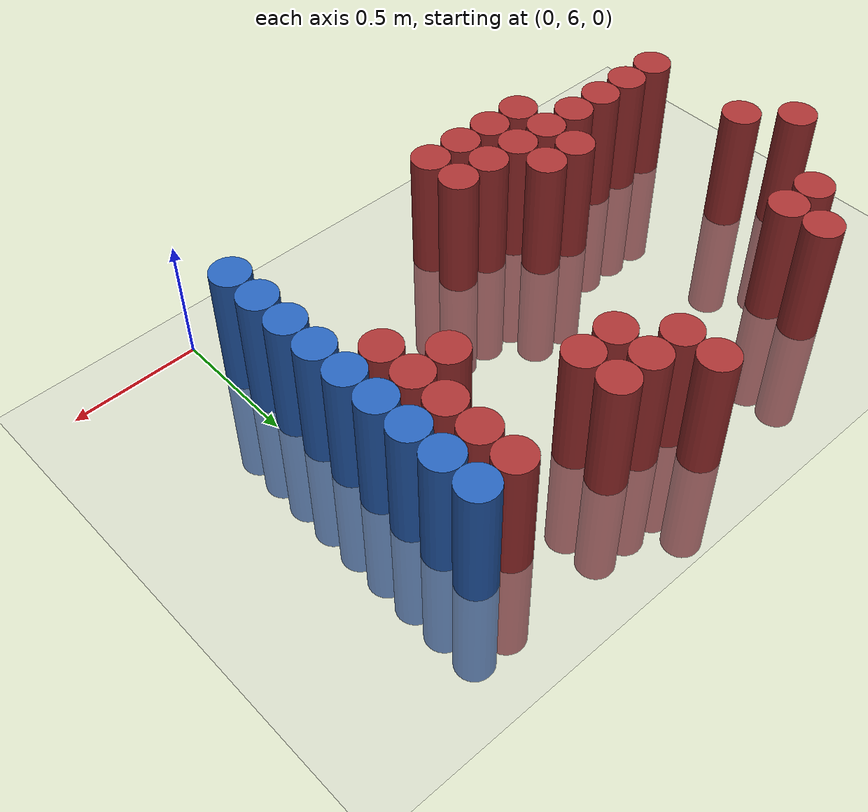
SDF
<sdf version="1.6">
 <world name="default">
  <model name="ground_plane">
   <static>1</static>
   <link name="link">
    <collision name="collision">
     <geometry><plane><normal>0 0 1</normal><size>100 100</size></plane></geometry>
     <surface><friction><ode><mu>100</mu><mu2>50</mu2></ode></friction></surface>
    </collision>
    <visual name="visual">
     <cast_shadows>0</cast_shadows>
     <geometry><plane><normal>0 0 1</normal><size>100 100</size></plane></geometry>
     <material>
      <script><uri>file://media/materials/scripts/gazebo.material</uri><name>Gazebo/Grey</name></script>
     </material>
    </visual>
   </link>
  </model>
  <model name="unit_cylinder_210">
   <static>1</static>
   <pose>-2.175000 6.975000 0.000000 0.000000 0.000000 0.000000</pose>
   <link name="link">
    <inertial>
     <mass>1</mass>
     <inertia><ixx>0.145833</ixx><ixy>0</ixy><ixz>0</ixz><iyy>0.145833</iyy><iyz>0</iyz><izz>0.125</izz></inertia>
    </inertial>
    <collision name="collision">
     <geometry><cylinder><radius>0.075000</radius><length>1</length></cylinder></geometry>
    </collision>
    <visual name="visual">
     <geometry><cylinder><radius>0.075000</radius><length>1</length></cylinder></geometry>
     <material>
      <ambient>0.648000 0.192000 0.192000 1</ambient>
      <diffuse>0.648000 0.192000 0.192000 1</diffuse>
     </material>
     <material>
      <script><name>Gazebo/Grey</name><uri>file://media/materials/scripts/gazebo.material</uri></script>
     </material>
    </visual>
    <sensor name="sensor_contact" type="contact"><contact><collision>collision</collision></contact></sensor>
   </link>
   <plugin filename="gz-sim-touchplugin-system" name="gz::sim::systems::TouchPlugin">
    <target>robot</target>
    <namespace>robot</namespace>
    <time>0.001</time>
    <enabled>true</enabled>
   </plugin>
  </model>
  <model name="unit_cylinder_212">
   <static>1</static>
   <pose>-2.025000 6.375000 0.000000 0.000000 0.000000 0.000000</pose>
   <link name="link">
    <inertial>
     <mass>1</mass>
     <inertia><ixx>0.145833</ixx><ixy>0</ixy><ixz>0</ixz><iyy>0.145833</iyy><iyz>0</iyz><izz>0.125</izz></inertia>
    </inertial>
    <collision name="collision">
     <geometry><cylinder><radius>0.075000</radius><length>1</length></cylinder></geometry>
    </collision>
    <visual name="visual">
     <geometry><cylinder><radius>0.075000</radius><length>1</length></cylinder></geometry>
     <material>
      <ambient>0.648000 0.192000 0.192000 1</ambient>
      <diffuse>0.648000 0.192000 0.192000 1</diffuse>
     </material>
     <material>
      <script><name>Gazebo/Grey</name><uri>file://media/materials/scripts/gazebo.material</uri></script>
     </material>
    </visual>
    <sensor name="sensor_contact" type="contact"><contact><collision>collision</collision></contact></sensor>
   </link>
   <plugin filename="gz-sim-touchplugin-system" name="gz::sim::systems::TouchPlugin">
    <target>robot</target>
    <namespace>robot</namespace>
    <time>0.001</time>
    <enabled>true</enabled>
   </plugin>
  </model>
  <model name="unit_cylinder_213">
   <static>1</static>
   <pose>-2.025000 6.825000 0.000000 0.000000 0.000000 0.000000</pose>
   <link name="link">
    <inertial>
     <mass>1</mass>
     <inertia><ixx>0.145833</ixx><ixy>0</ixy><ixz>0</ixz><iyy>0.145833</iyy><iyz>0</iyz><izz>0.125</izz></inertia>
    </inertial>
    <collision name="collision">
     <geometry><cylinder><radius>0.075000</radius><length>1</length></cylinder></geometry>
    </collision>
    <visual name="visual">
     <geometry><cylinder><radius>0.075000</radius><length>1</length></cylinder></geometry>
     <material>
      <ambient>0.648000 0.192000 0.192000 1</ambient>
      <diffuse>0.648000 0.192000 0.192000 1</diffuse>
     </material>
     <material>
      <script><name>Gazebo/Grey</name><uri>file://media/materials/scripts/gazebo.material</uri></script>
     </material>
    </visual>
    <sensor name="sensor_contact" type="contact"><contact><collision>collision</collision></contact></sensor>
   </link>
   <plugin filename="gz-sim-touchplugin-system" name="gz::sim::systems::TouchPlugin">
    <target>robot</target>
    <namespace>robot</namespace>
    <time>0.001</time>
    <enabled>true</enabled>
   </plugin>
  </model>
  <model name="unit_cylinder_217">
   <static>1</static>
   <pose>-1.875000 6.375000 0.000000 0.000000 0.000000 0.000000</pose>
   <link name="link">
    <inertial>
     <mass>1</mass>
     <inertia><ixx>0.145833</ixx><ixy>0</ixy><ixz>0</ixz><iyy>0.145833</iyy><iyz>0</iyz><izz>0.125</izz></inertia>
    </inertial>
    <collision name="collision">
     <geometry><cylinder><radius>0.075000</radius><length>1</length></cylinder></geometry>
    </collision>
    <visual name="visual">
     <geometry><cylinder><radius>0.075000</radius><length>1</length></cylinder></geometry>
     <material>
      <ambient>0.648000 0.192000 0.192000 1</ambient>
      <diffuse>0.648000 0.192000 0.192000 1</diffuse>
     </material>
     <material>
      <script><name>Gazebo/Grey</name><uri>file://media/materials/scripts/gazebo.material</uri></script>
     </material>
    </visual>
    <sensor name="sensor_contact" type="contact"><contact><collision>collision</collision></contact></sensor>
   </link>
   <plugin filename="gz-sim-touchplugin-system" name="gz::sim::systems::TouchPlugin">
    <target>robot</target>
    <namespace>robot</namespace>
    <time>0.001</time>
    <enabled>true</enabled>
   </plugin>
  </model>
  <model name="unit_cylinder_218">
   <static>1</static>
   <pose>-1.875000 7.275000 0.000000 0.000000 0.000000 0.000000</pose>
   <link name="link">
    <inertial>
     <mass>1</mass>
     <inertia><ixx>0.145833</ixx><ixy>0</ixy><ixz>0</ixz><iyy>0.145833</iyy><iyz>0</iyz><izz>0.125</izz></inertia>
    </inertial>
    <collision name="collision">
     <geometry><cylinder><radius>0.075000</radius><length>1</length></cylinder></geometry>
    </collision>
    <visual name="visual">
     <geometry><cylinder><radius>0.075000</radius><length>1</length></cylinder></geometry>
     <material>
      <ambient>0.648000 0.192000 0.192000 1</ambient>
      <diffuse>0.648000 0.192000 0.192000 1</diffuse>
     </material>
     <material>
      <script><name>Gazebo/Grey</name><uri>file://media/materials/scripts/gazebo.material</uri></script>
     </material>
    </visual>
    <sensor name="sensor_contact" type="contact"><contact><collision>collision</collision></contact></sensor>
   </link>
   <plugin filename="gz-sim-touchplugin-system" name="gz::sim::systems::TouchPlugin">
    <target>robot</target>
    <namespace>robot</namespace>
    <time>0.001</time>
    <enabled>true</enabled>
   </plugin>
  </model>
  <model name="unit_cylinder_221">
   <static>1</static>
   <pose>-1.725000 6.375000 0.000000 0.000000 0.000000 0.000000</pose>
   <link name="link">
    <inertial>
     <mass>1</mass>
     <inertia><ixx>0.145833</ixx><ixy>0</ixy><ixz>0</ixz><iyy>0.145833</iyy><iyz>0</iyz><izz>0.125</izz></inertia>
    </inertial>
    <collision name="collision">
     <geometry><cylinder><radius>0.075000</radius><length>1</length></cylinder></geometry>
    </collision>
    <visual name="visual">
     <geometry><cylinder><radius>0.075000</radius><length>1</length></cylinder></geometry>
     <material>
      <ambient>0.648000 0.192000 0.192000 1</ambient>
      <diffuse>0.648000 0.192000 0.192000 1</diffuse>
     </material>
     <material>
      <script><name>Gazebo/Grey</name><uri>file://media/materials/scripts/gazebo.material</uri></script>
     </material>
    </visual>
    <sensor name="sensor_contact" type="contact"><contact><collision>collision</collision></contact></sensor>
   </link>
   <plugin filename="gz-sim-touchplugin-system" name="gz::sim::systems::TouchPlugin">
    <target>robot</target>
    <namespace>robot</namespace>
    <time>0.001</time>
    <enabled>true</enabled>
   </plugin>
  </model>
  <model name="unit_cylinder_222">
   <static>1</static>
   <pose>-1.725000 7.275000 0.000000 0.000000 0.000000 0.000000</pose>
   <link name="link">
    <inertial>
     <mass>1</mass>
     <inertia><ixx>0.145833</ixx><ixy>0</ixy><ixz>0</ixz><iyy>0.145833</iyy><iyz>0</iyz><izz>0.125</izz></inertia>
    </inertial>
    <collision name="collision">
     <geometry><cylinder><radius>0.075000</radius><length>1</length></cylinder></geometry>
    </collision>
    <visual name="visual">
     <geometry><cylinder><radius>0.075000</radius><length>1</length></cylinder></geometry>
     <material>
      <ambient>0.648000 0.192000 0.192000 1</ambient>
      <diffuse>0.648000 0.192000 0.192000 1</diffuse>
     </material>
     <material>
      <script><name>Gazebo/Grey</name><uri>file://media/materials/scripts/gazebo.material</uri></script>
     </material>
    </visual>
    <sensor name="sensor_contact" type="contact"><contact><collision>collision</collision></contact></sensor>
   </link>
   <plugin filename="gz-sim-touchplugin-system" name="gz::sim::systems::TouchPlugin">
    <target>robot</target>
    <namespace>robot</namespace>
    <time>0.001</time>
    <enabled>true</enabled>
   </plugin>
  </model>
  <model name="unit_cylinder_223">
   <static>1</static>
   <pose>-1.725000 7.425000 0.000000 0.000000 0.000000 0.000000</pose>
   <link name="link">
    <inertial>
     <mass>1</mass>
     <inertia><ixx>0.145833</ixx><ixy>0</ixy><ixz>0</ixz><iyy>0.145833</iyy><iyz>0</iyz><izz>0.125</izz></inertia>
    </inertial>
    <collision name="collision">
     <geometry><cylinder><radius>0.075000</radius><length>1</length></cylinder></geometry>
    </collision>
    <visual name="visual">
     <geometry><cylinder><radius>0.075000</radius><length>1</length></cylinder></geometry>
     <material>
      <ambient>0.648000 0.192000 0.192000 1</ambient>
      <diffuse>0.648000 0.192000 0.192000 1</diffuse>
     </material>
     <material>
      <script><name>Gazebo/Grey</name><uri>file://media/materials/scripts/gazebo.material</uri></script>
     </material>
    </visual>
    <sensor name="sensor_contact" type="contact"><contact><collision>collision</collision></contact></sensor>
   </link>
   <plugin filename="gz-sim-touchplugin-system" name="gz::sim::systems::TouchPlugin">
    <target>robot</target>
    <namespace>robot</namespace>
    <time>0.001</time>
    <enabled>true</enabled>
   </plugin>
  </model>
  <model name="unit_cylinder_226">
   <static>1</static>
   <pose>-1.575000 6.375000 0.000000 0.000000 0.000000 0.000000</pose>
   <link name="link">
    <inertial>
     <mass>1</mass>
     <inertia><ixx>0.145833</ixx><ixy>0</ixy><ixz>0</ixz><iyy>0.145833</iyy><iyz>0</iyz><izz>0.125</izz></inertia>
    </inertial>
    <collision name="collision">
     <geometry><cylinder><radius>0.075000</radius><length>1</length></cylinder></geometry>
    </collision>
    <visual name="visual">
     <geometry><cylinder><radius>0.075000</radius><length>1</length></cylinder></geometry>
     <material>
      <ambient>0.648000 0.192000 0.192000 1</ambient>
      <diffuse>0.648000 0.192000 0.192000 1</diffuse>
     </material>
     <material>
      <script><name>Gazebo/Grey</name><uri>file://media/materials/scripts/gazebo.material</uri></script>
     </material>
    </visual>
    <sensor name="sensor_contact" type="contact"><contact><collision>collision</collision></contact></sensor>
   </link>
   <plugin filename="gz-sim-touchplugin-system" name="gz::sim::systems::TouchPlugin">
    <target>robot</target>
    <namespace>robot</namespace>
    <time>0.001</time>
    <enabled>true</enabled>
   </plugin>
  </model>
  <model name="unit_cylinder_229">
   <static>1</static>
   <pose>-1.425000 6.225000 0.000000 0.000000 0.000000 0.000000</pose>
   <link name="link">
    <inertial>
     <mass>1</mass>
     <inertia><ixx>0.145833</ixx><ixy>0</ixy><ixz>0</ixz><iyy>0.145833</iyy><iyz>0</iyz><izz>0.125</izz></inertia>
    </inertial>
    <collision name="collision">
     <geometry><cylinder><radius>0.075000</radius><length>1</length></cylinder></geometry>
    </collision>
    <visual name="visual">
     <geometry><cylinder><radius>0.075000</radius><length>1</length></cylinder></geometry>
     <material>
      <ambient>0.648000 0.192000 0.192000 1</ambient>
      <diffuse>0.648000 0.192000 0.192000 1</diffuse>
     </material>
     <material>
      <script><name>Gazebo/Grey</name><uri>file://media/materials/scripts/gazebo.material</uri></script>
     </material>
    </visual>
    <sensor name="sensor_contact" type="contact"><contact><collision>collision</collision></contact></sensor>
   </link>
   <plugin filename="gz-sim-touchplugin-system" name="gz::sim::systems::TouchPlugin">
    <target>robot</target>
    <namespace>robot</namespace>
    <time>0.001</time>
    <enabled>true</enabled>
   </plugin>
  </model>
  <model name="unit_cylinder_230">
   <static>1</static>
   <pose>-1.425000 6.375000 0.000000 0.000000 0.000000 0.000000</pose>
   <link name="link">
    <inertial>
     <mass>1</mass>
     <inertia><ixx>0.145833</ixx><ixy>0</ixy><ixz>0</ixz><iyy>0.145833</iyy><iyz>0</iyz><izz>0.125</izz></inertia>
    </inertial>
    <collision name="collision">
     <geometry><cylinder><radius>0.075000</radius><length>1</length></cylinder></geometry>
    </collision>
    <visual name="visual">
     <geometry><cylinder><radius>0.075000</radius><length>1</length></cylinder></geometry>
     <material>
      <ambient>0.648000 0.192000 0.192000 1</ambient>
      <diffuse>0.648000 0.192000 0.192000 1</diffuse>
     </material>
     <material>
      <script><name>Gazebo/Grey</name><uri>file://media/materials/scripts/gazebo.material</uri></script>
     </material>
    </visual>
    <sensor name="sensor_contact" type="contact"><contact><collision>collision</collision></contact></sensor>
   </link>
   <plugin filename="gz-sim-touchplugin-system" name="gz::sim::systems::TouchPlugin">
    <target>robot</target>
    <namespace>robot</namespace>
    <time>0.001</time>
    <enabled>true</enabled>
   </plugin>
  </model>
  <model name="unit_cylinder_231">
   <static>1</static>
   <pose>-1.425000 6.525000 0.000000 0.000000 0.000000 0.000000</pose>
   <link name="link">
    <inertial>
     <mass>1</mass>
     <inertia><ixx>0.145833</ixx><ixy>0</ixy><ixz>0</ixz><iyy>0.145833</iyy><iyz>0</iyz><izz>0.125</izz></inertia>
    </inertial>
    <collision name="collision">
     <geometry><cylinder><radius>0.075000</radius><length>1</length></cylinder></geometry>
    </collision>
    <visual name="visual">
     <geometry><cylinder><radius>0.075000</radius><length>1</length></cylinder></geometry>
     <material>
      <ambient>0.648000 0.192000 0.192000 1</ambient>
      <diffuse>0.648000 0.192000 0.192000 1</diffuse>
     </material>
     <material>
      <script><name>Gazebo/Grey</name><uri>file://media/materials/scripts/gazebo.material</uri></script>
     </material>
    </visual>
    <sensor name="sensor_contact" type="contact"><contact><collision>collision</collision></contact></sensor>
   </link>
   <plugin filename="gz-sim-touchplugin-system" name="gz::sim::systems::TouchPlugin">
    <target>robot</target>
    <namespace>robot</namespace>
    <time>0.001</time>
    <enabled>true</enabled>
   </plugin>
  </model>
  <model name="unit_cylinder_233">
   <static>1</static>
   <pose>-1.275000 6.225000 0.000000 0.000000 0.000000 0.000000</pose>
   <link name="link">
    <inertial>
     <mass>1</mass>
     <inertia><ixx>0.145833</ixx><ixy>0</ixy><ixz>0</ixz><iyy>0.145833</iyy><iyz>0</iyz><izz>0.125</izz></inertia>
    </inertial>
    <collision name="collision">
     <geometry><cylinder><radius>0.075000</radius><length>1</length></cylinder></geometry>
    </collision>
    <visual name="visual">
     <geometry><cylinder><radius>0.075000</radius><length>1</length></cylinder></geometry>
     <material>
      <ambient>0.648000 0.192000 0.192000 1</ambient>
      <diffuse>0.648000 0.192000 0.192000 1</diffuse>
     </material>
     <material>
      <script><name>Gazebo/Grey</name><uri>file://media/materials/scripts/gazebo.material</uri></script>
     </material>
    </visual>
    <sensor name="sensor_contact" type="contact"><contact><collision>collision</collision></contact></sensor>
   </link>
   <plugin filename="gz-sim-touchplugin-system" name="gz::sim::systems::TouchPlugin">
    <target>robot</target>
    <namespace>robot</namespace>
    <time>0.001</time>
    <enabled>true</enabled>
   </plugin>
  </model>
  <model name="unit_cylinder_234">
   <static>1</static>
   <pose>-1.275000 6.375000 0.000000 0.000000 0.000000 0.000000</pose>
   <link name="link">
    <inertial>
     <mass>1</mass>
     <inertia><ixx>0.145833</ixx><ixy>0</ixy><ixz>0</ixz><iyy>0.145833</iyy><iyz>0</iyz><izz>0.125</izz></inertia>
    </inertial>
    <collision name="collision">
     <geometry><cylinder><radius>0.075000</radius><length>1</length></cylinder></geometry>
    </collision>
    <visual name="visual">
     <geometry><cylinder><radius>0.075000</radius><length>1</length></cylinder></geometry>
     <material>
      <ambient>0.648000 0.192000 0.192000 1</ambient>
      <diffuse>0.648000 0.192000 0.192000 1</diffuse>
     </material>
     <material>
      <script><name>Gazebo/Grey</name><uri>file://media/materials/scripts/gazebo.material</uri></script>
     </material>
    </visual>
    <sensor name="sensor_contact" type="contact"><contact><collision>collision</collision></contact></sensor>
   </link>
   <plugin filename="gz-sim-touchplugin-system" name="gz::sim::systems::TouchPlugin">
    <target>robot</target>
    <namespace>robot</namespace>
    <time>0.001</time>
    <enabled>true</enabled>
   </plugin>
  </model>
  <model name="unit_cylinder_235">
   <static>1</static>
   <pose>-1.275000 6.525000 0.000000 0.000000 0.000000 0.000000</pose>
   <link name="link">
    <inertial>
     <mass>1</mass>
     <inertia><ixx>0.145833</ixx><ixy>0</ixy><ixz>0</ixz><iyy>0.145833</iyy><iyz>0</iyz><izz>0.125</izz></inertia>
    </inertial>
    <collision name="collision">
     <geometry><cylinder><radius>0.075000</radius><length>1</length></cylinder></geometry>
    </collision>
    <visual name="visual">
     <geometry><cylinder><radius>0.075000</radius><length>1</length></cylinder></geometry>
     <material>
      <ambient>0.648000 0.192000 0.192000 1</ambient>
      <diffuse>0.648000 0.192000 0.192000 1</diffuse>
     </material>
     <material>
      <script><name>Gazebo/Grey</name><uri>file://media/materials/scripts/gazebo.material</uri></script>
     </material>
    </visual>
    <sensor name="sensor_contact" type="contact"><contact><collision>collision</collision></contact></sensor>
   </link>
   <plugin filename="gz-sim-touchplugin-system" name="gz::sim::systems::TouchPlugin">
    <target>robot</target>
    <namespace>robot</namespace>
    <time>0.001</time>
    <enabled>true</enabled>
   </plugin>
  </model>
  <model name="unit_cylinder_238">
   <static>1</static>
   <pose>-1.125000 6.225000 0.000000 0.000000 0.000000 0.000000</pose>
   <link name="link">
    <inertial>
     <mass>1</mass>
     <inertia><ixx>0.145833</ixx><ixy>0</ixy><ixz>0</ixz><iyy>0.145833</iyy><iyz>0</iyz><izz>0.125</izz></inertia>
    </inertial>
    <collision name="collision">
     <geometry><cylinder><radius>0.075000</radius><length>1</length></cylinder></geometry>
    </collision>
    <visual name="visual">
     <geometry><cylinder><radius>0.075000</radius><length>1</length></cylinder></geometry>
     <material>
      <ambient>0.648000 0.192000 0.192000 1</ambient>
      <diffuse>0.648000 0.192000 0.192000 1</diffuse>
     </material>
     <material>
      <script><name>Gazebo/Grey</name><uri>file://media/materials/scripts/gazebo.material</uri></script>
     </material>
    </visual>
    <sensor name="sensor_contact" type="contact"><contact><collision>collision</collision></contact></sensor>
   </link>
   <plugin filename="gz-sim-touchplugin-system" name="gz::sim::systems::TouchPlugin">
    <target>robot</target>
    <namespace>robot</namespace>
    <time>0.001</time>
    <enabled>true</enabled>
   </plugin>
  </model>
  <model name="unit_cylinder_239">
   <static>1</static>
   <pose>-1.125000 6.375000 0.000000 0.000000 0.000000 0.000000</pose>
   <link name="link">
    <inertial>
     <mass>1</mass>
     <inertia><ixx>0.145833</ixx><ixy>0</ixy><ixz>0</ixz><iyy>0.145833</iyy><iyz>0</iyz><izz>0.125</izz></inertia>
    </inertial>
    <collision name="collision">
     <geometry><cylinder><radius>0.075000</radius><length>1</length></cylinder></geometry>
    </collision>
    <visual name="visual">
     <geometry><cylinder><radius>0.075000</radius><length>1</length></cylinder></geometry>
     <material>
      <ambient>0.648000 0.192000 0.192000 1</ambient>
      <diffuse>0.648000 0.192000 0.192000 1</diffuse>
     </material>
     <material>
      <script><name>Gazebo/Grey</name><uri>file://media/materials/scripts/gazebo.material</uri></script>
     </material>
    </visual>
    <sensor name="sensor_contact" type="contact"><contact><collision>collision</collision></contact></sensor>
   </link>
   <plugin filename="gz-sim-touchplugin-system" name="gz::sim::systems::TouchPlugin">
    <target>robot</target>
    <namespace>robot</namespace>
    <time>0.001</time>
    <enabled>true</enabled>
   </plugin>
  </model>
  <model name="unit_cylinder_247">
   <static>1</static>
   <pose>-0.975000 6.225000 0.000000 0.000000 0.000000 0.000000</pose>
   <link name="link">
    <inertial>
     <mass>1</mass>
     <inertia><ixx>0.145833</ixx><ixy>0</ixy><ixz>0</ixz><iyy>0.145833</iyy><iyz>0</iyz><izz>0.125</izz></inertia>
    </inertial>
    <collision name="collision">
     <geometry><cylinder><radius>0.075000</radius><length>1</length></cylinder></geometry>
    </collision>
    <visual name="visual">
     <geometry><cylinder><radius>0.075000</radius><length>1</length></cylinder></geometry>
     <material>
      <ambient>0.648000 0.192000 0.192000 1</ambient>
      <diffuse>0.648000 0.192000 0.192000 1</diffuse>
     </material>
     <material>
      <script><name>Gazebo/Grey</name><uri>file://media/materials/scripts/gazebo.material</uri></script>
     </material>
    </visual>
    <sensor name="sensor_contact" type="contact"><contact><collision>collision</collision></contact></sensor>
   </link>
   <plugin filename="gz-sim-touchplugin-system" name="gz::sim::systems::TouchPlugin">
    <target>robot</target>
    <namespace>robot</namespace>
    <time>0.001</time>
    <enabled>true</enabled>
   </plugin>
  </model>
  <model name="unit_cylinder_248">
   <static>1</static>
   <pose>-0.975000 6.375000 0.000000 0.000000 0.000000 0.000000</pose>
   <link name="link">
    <inertial>
     <mass>1</mass>
     <inertia><ixx>0.145833</ixx><ixy>0</ixy><ixz>0</ixz><iyy>0.145833</iyy><iyz>0</iyz><izz>0.125</izz></inertia>
    </inertial>
    <collision name="collision">
     <geometry><cylinder><radius>0.075000</radius><length>1</length></cylinder></geometry>
    </collision>
    <visual name="visual">
     <geometry><cylinder><radius>0.075000</radius><length>1</length></cylinder></geometry>
     <material>
      <ambient>0.648000 0.192000 0.192000 1</ambient>
      <diffuse>0.648000 0.192000 0.192000 1</diffuse>
     </material>
     <material>
      <script><name>Gazebo/Grey</name><uri>file://media/materials/scripts/gazebo.material</uri></script>
     </material>
    </visual>
    <sensor name="sensor_contact" type="contact"><contact><collision>collision</collision></contact></sensor>
   </link>
   <plugin filename="gz-sim-touchplugin-system" name="gz::sim::systems::TouchPlugin">
    <target>robot</target>
    <namespace>robot</namespace>
    <time>0.001</time>
    <enabled>true</enabled>
   </plugin>
  </model>
  <model name="unit_cylinder_249">
   <static>1</static>
   <pose>-0.975000 7.425000 0.000000 0.000000 0.000000 0.000000</pose>
   <link name="link">
    <inertial>
     <mass>1</mass>
     <inertia><ixx>0.145833</ixx><ixy>0</ixy><ixz>0</ixz><iyy>0.145833</iyy><iyz>0</iyz><izz>0.125</izz></inertia>
    </inertial>
    <collision name="collision">
     <geometry><cylinder><radius>0.075000</radius><length>1</length></cylinder></geometry>
    </collision>
    <visual name="visual">
     <geometry><cylinder><radius>0.075000</radius><length>1</length></cylinder></geometry>
     <material>
      <ambient>0.648000 0.192000 0.192000 1</ambient>
      <diffuse>0.648000 0.192000 0.192000 1</diffuse>
     </material>
     <material>
      <script><name>Gazebo/Grey</name><uri>file://media/materials/scripts/gazebo.material</uri></script>
     </material>
    </visual>
    <sensor name="sensor_contact" type="contact"><contact><collision>collision</collision></contact></sensor>
   </link>
   <plugin filename="gz-sim-touchplugin-system" name="gz::sim::systems::TouchPlugin">
    <target>robot</target>
    <namespace>robot</namespace>
    <time>0.001</time>
    <enabled>true</enabled>
   </plugin>
  </model>
  <model name="unit_cylinder_250">
   <static>1</static>
   <pose>-0.975000 7.575000 0.000000 0.000000 0.000000 0.000000</pose>
   <link name="link">
    <inertial>
     <mass>1</mass>
     <inertia><ixx>0.145833</ixx><ixy>0</ixy><ixz>0</ixz><iyy>0.145833</iyy><iyz>0</iyz><izz>0.125</izz></inertia>
    </inertial>
    <collision name="collision">
     <geometry><cylinder><radius>0.075000</radius><length>1</length></cylinder></geometry>
    </collision>
    <visual name="visual">
     <geometry><cylinder><radius>0.075000</radius><length>1</length></cylinder></geometry>
     <material>
      <ambient>0.648000 0.192000 0.192000 1</ambient>
      <diffuse>0.648000 0.192000 0.192000 1</diffuse>
     </material>
     <material>
      <script><name>Gazebo/Grey</name><uri>file://media/materials/scripts/gazebo.material</uri></script>
     </material>
    </visual>
    <sensor name="sensor_contact" type="contact"><contact><collision>collision</collision></contact></sensor>
   </link>
   <plugin filename="gz-sim-touchplugin-system" name="gz::sim::systems::TouchPlugin">
    <target>robot</target>
    <namespace>robot</namespace>
    <time>0.001</time>
    <enabled>true</enabled>
   </plugin>
  </model>
  <model name="unit_cylinder_257">
   <static>1</static>
   <pose>-0.825000 7.275000 0.000000 0.000000 0.000000 0.000000</pose>
   <link name="link">
    <inertial>
     <mass>1</mass>
     <inertia><ixx>0.145833</ixx><ixy>0</ixy><ixz>0</ixz><iyy>0.145833</iyy><iyz>0</iyz><izz>0.125</izz></inertia>
    </inertial>
    <collision name="collision">
     <geometry><cylinder><radius>0.075000</radius><length>1</length></cylinder></geometry>
    </collision>
    <visual name="visual">
     <geometry><cylinder><radius>0.075000</radius><length>1</length></cylinder></geometry>
     <material>
      <ambient>0.648000 0.192000 0.192000 1</ambient>
      <diffuse>0.648000 0.192000 0.192000 1</diffuse>
     </material>
     <material>
      <script><name>Gazebo/Grey</name><uri>file://media/materials/scripts/gazebo.material</uri></script>
     </material>
    </visual>
    <sensor name="sensor_contact" type="contact"><contact><collision>collision</collision></contact></sensor>
   </link>
   <plugin filename="gz-sim-touchplugin-system" name="gz::sim::systems::TouchPlugin">
    <target>robot</target>
    <namespace>robot</namespace>
    <time>0.001</time>
    <enabled>true</enabled>
   </plugin>
  </model>
  <model name="unit_cylinder_258">
   <static>1</static>
   <pose>-0.825000 7.425000 0.000000 0.000000 0.000000 0.000000</pose>
   <link name="link">
    <inertial>
     <mass>1</mass>
     <inertia><ixx>0.145833</ixx><ixy>0</ixy><ixz>0</ixz><iyy>0.145833</iyy><iyz>0</iyz><izz>0.125</izz></inertia>
    </inertial>
    <collision name="collision">
     <geometry><cylinder><radius>0.075000</radius><length>1</length></cylinder></geometry>
    </collision>
    <visual name="visual">
     <geometry><cylinder><radius>0.075000</radius><length>1</length></cylinder></geometry>
     <material>
      <ambient>0.648000 0.192000 0.192000 1</ambient>
      <diffuse>0.648000 0.192000 0.192000 1</diffuse>
     </material>
     <material>
      <script><name>Gazebo/Grey</name><uri>file://media/materials/scripts/gazebo.material</uri></script>
     </material>
    </visual>
    <sensor name="sensor_contact" type="contact"><contact><collision>collision</collision></contact></sensor>
   </link>
   <plugin filename="gz-sim-touchplugin-system" name="gz::sim::systems::TouchPlugin">
    <target>robot</target>
    <namespace>robot</namespace>
    <time>0.001</time>
    <enabled>true</enabled>
   </plugin>
  </model>
  <model name="unit_cylinder_264">
   <static>1</static>
   <pose>-0.675000 7.275000 0.000000 0.000000 0.000000 0.000000</pose>
   <link name="link">
    <inertial>
     <mass>1</mass>
     <inertia><ixx>0.145833</ixx><ixy>0</ixy><ixz>0</ixz><iyy>0.145833</iyy><iyz>0</iyz><izz>0.125</izz></inertia>
    </inertial>
    <collision name="collision">
     <geometry><cylinder><radius>0.075000</radius><length>1</length></cylinder></geometry>
    </collision>
    <visual name="visual">
     <geometry><cylinder><radius>0.075000</radius><length>1</length></cylinder></geometry>
     <material>
      <ambient>0.648000 0.192000 0.192000 1</ambient>
      <diffuse>0.648000 0.192000 0.192000 1</diffuse>
     </material>
     <material>
      <script><name>Gazebo/Grey</name><uri>file://media/materials/scripts/gazebo.material</uri></script>
     </material>
    </visual>
    <sensor name="sensor_contact" type="contact"><contact><collision>collision</collision></contact></sensor>
   </link>
   <plugin filename="gz-sim-touchplugin-system" name="gz::sim::systems::TouchPlugin">
    <target>robot</target>
    <namespace>robot</namespace>
    <time>0.001</time>
    <enabled>true</enabled>
   </plugin>
  </model>
  <model name="unit_cylinder_265">
   <static>1</static>
   <pose>-0.675000 7.425000 0.000000 0.000000 0.000000 0.000000</pose>
   <link name="link">
    <inertial>
     <mass>1</mass>
     <inertia><ixx>0.145833</ixx><ixy>0</ixy><ixz>0</ixz><iyy>0.145833</iyy><iyz>0</iyz><izz>0.125</izz></inertia>
    </inertial>
    <collision name="collision">
     <geometry><cylinder><radius>0.075000</radius><length>1</length></cylinder></geometry>
    </collision>
    <visual name="visual">
     <geometry><cylinder><radius>0.075000</radius><length>1</length></cylinder></geometry>
     <material>
      <ambient>0.648000 0.192000 0.192000 1</ambient>
      <diffuse>0.648000 0.192000 0.192000 1</diffuse>
     </material>
     <material>
      <script><name>Gazebo/Grey</name><uri>file://media/materials/scripts/gazebo.material</uri></script>
     </material>
    </visual>
    <sensor name="sensor_contact" type="contact"><contact><collision>collision</collision></contact></sensor>
   </link>
   <plugin filename="gz-sim-touchplugin-system" name="gz::sim::systems::TouchPlugin">
    <target>robot</target>
    <namespace>robot</namespace>
    <time>0.001</time>
    <enabled>true</enabled>
   </plugin>
  </model>
  <model name="unit_cylinder_269">
   <static>1</static>
   <pose>-0.375000 6.975000 0.000000 0.000000 0.000000 0.000000</pose>
   <link name="link">
    <inertial>
     <mass>1</mass>
     <inertia><ixx>0.145833</ixx><ixy>0</ixy><ixz>0</ixz><iyy>0.145833</iyy><iyz>0</iyz><izz>0.125</izz></inertia>
    </inertial>
    <collision name="collision">
     <geometry><cylinder><radius>0.075000</radius><length>1</length></cylinder></geometry>
    </collision>
    <visual name="visual">
     <geometry><cylinder><radius>0.075000</radius><length>1</length></cylinder></geometry>
     <material>
      <ambient>0.648000 0.192000 0.192000 1</ambient>
      <diffuse>0.648000 0.192000 0.192000 1</diffuse>
     </material>
     <material>
      <script><name>Gazebo/Grey</name><uri>file://media/materials/scripts/gazebo.material</uri></script>
     </material>
    </visual>
    <sensor name="sensor_contact" type="contact"><contact><collision>collision</collision></contact></sensor>
   </link>
   <plugin filename="gz-sim-touchplugin-system" name="gz::sim::systems::TouchPlugin">
    <target>robot</target>
    <namespace>robot</namespace>
    <time>0.001</time>
    <enabled>true</enabled>
   </plugin>
  </model>
  <model name="unit_cylinder_278">
   <static>1</static>
   <pose>-0.225000 6.825000 0.000000 0.000000 0.000000 0.000000</pose>
   <link name="link">
    <inertial>
     <mass>1</mass>
     <inertia><ixx>0.145833</ixx><ixy>0</ixy><ixz>0</ixz><iyy>0.145833</iyy><iyz>0</iyz><izz>0.125</izz></inertia>
    </inertial>
    <collision name="collision">
     <geometry><cylinder><radius>0.075000</radius><length>1</length></cylinder></geometry>
    </collision>
    <visual name="visual">
     <geometry><cylinder><radius>0.075000</radius><length>1</length></cylinder></geometry>
     <material>
      <ambient>0.648000 0.192000 0.192000 1</ambient>
      <diffuse>0.648000 0.192000 0.192000 1</diffuse>
     </material>
     <material>
      <script><name>Gazebo/Grey</name><uri>file://media/materials/scripts/gazebo.material</uri></script>
     </material>
    </visual>
    <sensor name="sensor_contact" type="contact"><contact><collision>collision</collision></contact></sensor>
   </link>
   <plugin filename="gz-sim-touchplugin-system" name="gz::sim::systems::TouchPlugin">
    <target>robot</target>
    <namespace>robot</namespace>
    <time>0.001</time>
    <enabled>true</enabled>
   </plugin>
  </model>
  <model name="unit_cylinder_279">
   <static>1</static>
   <pose>-0.225000 6.975000 0.000000 0.000000 0.000000 0.000000</pose>
   <link name="link">
    <inertial>
     <mass>1</mass>
     <inertia><ixx>0.145833</ixx><ixy>0</ixy><ixz>0</ixz><iyy>0.145833</iyy><iyz>0</iyz><izz>0.125</izz></inertia>
    </inertial>
    <collision name="collision">
     <geometry><cylinder><radius>0.075000</radius><length>1</length></cylinder></geometry>
    </collision>
    <visual name="visual">
     <geometry><cylinder><radius>0.075000</radius><length>1</length></cylinder></geometry>
     <material>
      <ambient>0.648000 0.192000 0.192000 1</ambient>
      <diffuse>0.648000 0.192000 0.192000 1</diffuse>
     </material>
     <material>
      <script><name>Gazebo/Grey</name><uri>file://media/materials/scripts/gazebo.material</uri></script>
     </material>
    </visual>
    <sensor name="sensor_contact" type="contact"><contact><collision>collision</collision></contact></sensor>
   </link>
   <plugin filename="gz-sim-touchplugin-system" name="gz::sim::systems::TouchPlugin">
    <target>robot</target>
    <namespace>robot</namespace>
    <time>0.001</time>
    <enabled>true</enabled>
   </plugin>
  </model>
  <model name="unit_cylinder_280">
   <static>1</static>
   <pose>-0.225000 7.125000 0.000000 0.000000 0.000000 0.000000</pose>
   <link name="link">
    <inertial>
     <mass>1</mass>
     <inertia><ixx>0.145833</ixx><ixy>0</ixy><ixz>0</ixz><iyy>0.145833</iyy><iyz>0</iyz><izz>0.125</izz></inertia>
    </inertial>
    <collision name="collision">
     <geometry><cylinder><radius>0.075000</radius><length>1</length></cylinder></geometry>
    </collision>
    <visual name="visual">
     <geometry><cylinder><radius>0.075000</radius><length>1</length></cylinder></geometry>
     <material>
      <ambient>0.648000 0.192000 0.192000 1</ambient>
      <diffuse>0.648000 0.192000 0.192000 1</diffuse>
     </material>
     <material>
      <script><name>Gazebo/Grey</name><uri>file://media/materials/scripts/gazebo.material</uri></script>
     </material>
    </visual>
    <sensor name="sensor_contact" type="contact"><contact><collision>collision</collision></contact></sensor>
   </link>
   <plugin filename="gz-sim-touchplugin-system" name="gz::sim::systems::TouchPlugin">
    <target>robot</target>
    <namespace>robot</namespace>
    <time>0.001</time>
    <enabled>true</enabled>
   </plugin>
  </model>
  <model name="unit_cylinder_281">
   <static>1</static>
   <pose>-0.225000 7.275000 0.000000 0.000000 0.000000 0.000000</pose>
   <link name="link">
    <inertial>
     <mass>1</mass>
     <inertia><ixx>0.145833</ixx><ixy>0</ixy><ixz>0</ixz><iyy>0.145833</iyy><iyz>0</iyz><izz>0.125</izz></inertia>
    </inertial>
    <collision name="collision">
     <geometry><cylinder><radius>0.075000</radius><length>1</length></cylinder></geometry>
    </collision>
    <visual name="visual">
     <geometry><cylinder><radius>0.075000</radius><length>1</length></cylinder></geometry>
     <material>
      <ambient>0.648000 0.192000 0.192000 1</ambient>
      <diffuse>0.648000 0.192000 0.192000 1</diffuse>
     </material>
     <material>
      <script><name>Gazebo/Grey</name><uri>file://media/materials/scripts/gazebo.material</uri></script>
     </material>
    </visual>
    <sensor name="sensor_contact" type="contact"><contact><collision>collision</collision></contact></sensor>
   </link>
   <plugin filename="gz-sim-touchplugin-system" name="gz::sim::systems::TouchPlugin">
    <target>robot</target>
    <namespace>robot</namespace>
    <time>0.001</time>
    <enabled>true</enabled>
   </plugin>
  </model>
  <model name="unit_cylinder_282">
   <static>1</static>
   <pose>-0.225000 7.425000 0.000000 0.000000 0.000000 0.000000</pose>
   <link name="link">
    <inertial>
     <mass>1</mass>
     <inertia><ixx>0.145833</ixx><ixy>0</ixy><ixz>0</ixz><iyy>0.145833</iyy><iyz>0</iyz><izz>0.125</izz></inertia>
    </inertial>
    <collision name="collision">
     <geometry><cylinder><radius>0.075000</radius><length>1</length></cylinder></geometry>
    </collision>
    <visual name="visual">
     <geometry><cylinder><radius>0.075000</radius><length>1</length></cylinder></geometry>
     <material>
      <ambient>0.648000 0.192000 0.192000 1</ambient>
      <diffuse>0.648000 0.192000 0.192000 1</diffuse>
     </material>
     <material>
      <script><name>Gazebo/Grey</name><uri>file://media/materials/scripts/gazebo.material</uri></script>
     </material>
    </visual>
    <sensor name="sensor_contact" type="contact"><contact><collision>collision</collision></contact></sensor>
   </link>
   <plugin filename="gz-sim-touchplugin-system" name="gz::sim::systems::TouchPlugin">
    <target>robot</target>
    <namespace>robot</namespace>
    <time>0.001</time>
    <enabled>true</enabled>
   </plugin>
  </model>
  <model name="unit_cylinder_298">
   <static>1</static>
   <pose>-0.075000 6.225000 0.000000 0.000000 0.000000 0.000000</pose>
   <link name="link">
    <inertial>
     <mass>1</mass>
     <inertia><ixx>0.145833</ixx><ixy>0</ixy><ixz>0</ixz><iyy>0.145833</iyy><iyz>0</iyz><izz>0.125</izz></inertia>
    </inertial>
    <collision name="collision">
     <geometry><cylinder><radius>0.075000</radius><length>1</length></cylinder></geometry>
    </collision>
    <visual name="visual">
     <geometry><cylinder><radius>0.075000</radius><length>1</length></cylinder></geometry>
     <material>
      <ambient>0.152000 0.379000 0.720000 1</ambient>
      <diffuse>0.152000 0.379000 0.720000 1</diffuse>
     </material>
     <material>
      <script><name>Gazebo/Grey</name><uri>file://media/materials/scripts/gazebo.material</uri></script>
     </material>
    </visual>
    <sensor name="sensor_contact" type="contact"><contact><collision>collision</collision></contact></sensor>
   </link>
   <plugin filename="gz-sim-touchplugin-system" name="gz::sim::systems::TouchPlugin">
    <target>robot</target>
    <namespace>robot</namespace>
    <time>0.001</time>
    <enabled>true</enabled>
   </plugin>
  </model>
  <model name="unit_cylinder_299">
   <static>1</static>
   <pose>-0.075000 6.375000 0.000000 0.000000 0.000000 0.000000</pose>
   <link name="link">
    <inertial>
     <mass>1</mass>
     <inertia><ixx>0.145833</ixx><ixy>0</ixy><ixz>0</ixz><iyy>0.145833</iyy><iyz>0</iyz><izz>0.125</izz></inertia>
    </inertial>
    <collision name="collision">
     <geometry><cylinder><radius>0.075000</radius><length>1</length></cylinder></geometry>
    </collision>
    <visual name="visual">
     <geometry><cylinder><radius>0.075000</radius><length>1</length></cylinder></geometry>
     <material>
      <ambient>0.152000 0.379000 0.720000 1</ambient>
      <diffuse>0.152000 0.379000 0.720000 1</diffuse>
     </material>
     <material>
      <script><name>Gazebo/Grey</name><uri>file://media/materials/scripts/gazebo.material</uri></script>
     </material>
    </visual>
    <sensor name="sensor_contact" type="contact"><contact><collision>collision</collision></contact></sensor>
   </link>
   <plugin filename="gz-sim-touchplugin-system" name="gz::sim::systems::TouchPlugin">
    <target>robot</target>
    <namespace>robot</namespace>
    <time>0.001</time>
    <enabled>true</enabled>
   </plugin>
  </model>
  <model name="unit_cylinder_300">
   <static>1</static>
   <pose>-0.075000 6.525000 0.000000 0.000000 0.000000 0.000000</pose>
   <link name="link">
    <inertial>
     <mass>1</mass>
     <inertia><ixx>0.145833</ixx><ixy>0</ixy><ixz>0</ixz><iyy>0.145833</iyy><iyz>0</iyz><izz>0.125</izz></inertia>
    </inertial>
    <collision name="collision">
     <geometry><cylinder><radius>0.075000</radius><length>1</length></cylinder></geometry>
    </collision>
    <visual name="visual">
     <geometry><cylinder><radius>0.075000</radius><length>1</length></cylinder></geometry>
     <material>
      <ambient>0.152000 0.379000 0.720000 1</ambient>
      <diffuse>0.152000 0.379000 0.720000 1</diffuse>
     </material>
     <material>
      <script><name>Gazebo/Grey</name><uri>file://media/materials/scripts/gazebo.material</uri></script>
     </material>
    </visual>
    <sensor name="sensor_contact" type="contact"><contact><collision>collision</collision></contact></sensor>
   </link>
   <plugin filename="gz-sim-touchplugin-system" name="gz::sim::systems::TouchPlugin">
    <target>robot</target>
    <namespace>robot</namespace>
    <time>0.001</time>
    <enabled>true</enabled>
   </plugin>
  </model>
  <model name="unit_cylinder_301">
   <static>1</static>
   <pose>-0.075000 6.675000 0.000000 0.000000 0.000000 0.000000</pose>
   <link name="link">
    <inertial>
     <mass>1</mass>
     <inertia><ixx>0.145833</ixx><ixy>0</ixy><ixz>0</ixz><iyy>0.145833</iyy><iyz>0</iyz><izz>0.125</izz></inertia>
    </inertial>
    <collision name="collision">
     <geometry><cylinder><radius>0.075000</radius><length>1</length></cylinder></geometry>
    </collision>
    <visual name="visual">
     <geometry><cylinder><radius>0.075000</radius><length>1</length></cylinder></geometry>
     <material>
      <ambient>0.152000 0.379000 0.720000 1</ambient>
      <diffuse>0.152000 0.379000 0.720000 1</diffuse>
     </material>
     <material>
      <script><name>Gazebo/Grey</name><uri>file://media/materials/scripts/gazebo.material</uri></script>
     </material>
    </visual>
    <sensor name="sensor_contact" type="contact"><contact><collision>collision</collision></contact></sensor>
   </link>
   <plugin filename="gz-sim-touchplugin-system" name="gz::sim::systems::TouchPlugin">
    <target>robot</target>
    <namespace>robot</namespace>
    <time>0.001</time>
    <enabled>true</enabled>
   </plugin>
  </model>
  <model name="unit_cylinder_302">
   <static>1</static>
   <pose>-0.075000 6.825000 0.000000 0.000000 0.000000 0.000000</pose>
   <link name="link">
    <inertial>
     <mass>1</mass>
     <inertia><ixx>0.145833</ixx><ixy>0</ixy><ixz>0</ixz><iyy>0.145833</iyy><iyz>0</iyz><izz>0.125</izz></inertia>
    </inertial>
    <collision name="collision">
     <geometry><cylinder><radius>0.075000</radius><length>1</length></cylinder></geometry>
    </collision>
    <visual name="visual">
     <geometry><cylinder><radius>0.075000</radius><length>1</length></cylinder></geometry>
     <material>
      <ambient>0.152000 0.379000 0.720000 1</ambient>
      <diffuse>0.152000 0.379000 0.720000 1</diffuse>
     </material>
     <material>
      <script><name>Gazebo/Grey</name><uri>file://media/materials/scripts/gazebo.material</uri></script>
     </material>
    </visual>
    <sensor name="sensor_contact" type="contact"><contact><collision>collision</collision></contact></sensor>
   </link>
   <plugin filename="gz-sim-touchplugin-system" name="gz::sim::systems::TouchPlugin">
    <target>robot</target>
    <namespace>robot</namespace>
    <time>0.001</time>
    <enabled>true</enabled>
   </plugin>
  </model>
  <model name="unit_cylinder_303">
   <static>1</static>
   <pose>-0.075000 6.975000 0.000000 0.000000 0.000000 0.000000</pose>
   <link name="link">
    <inertial>
     <mass>1</mass>
     <inertia><ixx>0.145833</ixx><ixy>0</ixy><ixz>0</ixz><iyy>0.145833</iyy><iyz>0</iyz><izz>0.125</izz></inertia>
    </inertial>
    <collision name="collision">
     <geometry><cylinder><radius>0.075000</radius><length>1</length></cylinder></geometry>
    </collision>
    <visual name="visual">
     <geometry><cylinder><radius>0.075000</radius><length>1</length></cylinder></geometry>
     <material>
      <ambient>0.152000 0.379000 0.720000 1</ambient>
      <diffuse>0.152000 0.379000 0.720000 1</diffuse>
     </material>
     <material>
      <script><name>Gazebo/Grey</name><uri>file://media/materials/scripts/gazebo.material</uri></script>
     </material>
    </visual>
    <sensor name="sensor_contact" type="contact"><contact><collision>collision</collision></contact></sensor>
   </link>
   <plugin filename="gz-sim-touchplugin-system" name="gz::sim::systems::TouchPlugin">
    <target>robot</target>
    <namespace>robot</namespace>
    <time>0.001</time>
    <enabled>true</enabled>
   </plugin>
  </model>
  <model name="unit_cylinder_304">
   <static>1</static>
   <pose>-0.075000 7.125000 0.000000 0.000000 0.000000 0.000000</pose>
   <link name="link">
    <inertial>
     <mass>1</mass>
     <inertia><ixx>0.145833</ixx><ixy>0</ixy><ixz>0</ixz><iyy>0.145833</iyy><iyz>0</iyz><izz>0.125</izz></inertia>
    </inertial>
    <collision name="collision">
     <geometry><cylinder><radius>0.075000</radius><length>1</length></cylinder></geometry>
    </collision>
    <visual name="visual">
     <geometry><cylinder><radius>0.075000</radius><length>1</length></cylinder></geometry>
     <material>
      <ambient>0.152000 0.379000 0.720000 1</ambient>
      <diffuse>0.152000 0.379000 0.720000 1</diffuse>
     </material>
     <material>
      <script><name>Gazebo/Grey</name><uri>file://media/materials/scripts/gazebo.material</uri></script>
     </material>
    </visual>
    <sensor name="sensor_contact" type="contact"><contact><collision>collision</collision></contact></sensor>
   </link>
   <plugin filename="gz-sim-touchplugin-system" name="gz::sim::systems::TouchPlugin">
    <target>robot</target>
    <namespace>robot</namespace>
    <time>0.001</time>
    <enabled>true</enabled>
   </plugin>
  </model>
  <model name="unit_cylinder_305">
   <static>1</static>
   <pose>-0.075000 7.275000 0.000000 0.000000 0.000000 0.000000</pose>
   <link name="link">
    <inertial>
     <mass>1</mass>
     <inertia><ixx>0.145833</ixx><ixy>0</ixy><ixz>0</ixz><iyy>0.145833</iyy><iyz>0</iyz><izz>0.125</izz></inertia>
    </inertial>
    <collision name="collision">
     <geometry><cylinder><radius>0.075000</radius><length>1</length></cylinder></geometry>
    </collision>
    <visual name="visual">
     <geometry><cylinder><radius>0.075000</radius><length>1</length></cylinder></geometry>
     <material>
      <ambient>0.152000 0.379000 0.720000 1</ambient>
      <diffuse>0.152000 0.379000 0.720000 1</diffuse>
     </material>
     <material>
      <script><name>Gazebo/Grey</name><uri>file://media/materials/scripts/gazebo.material</uri></script>
     </material>
    </visual>
    <sensor name="sensor_contact" type="contact"><contact><collision>collision</collision></contact></sensor>
   </link>
   <plugin filename="gz-sim-touchplugin-system" name="gz::sim::systems::TouchPlugin">
    <target>robot</target>
    <namespace>robot</namespace>
    <time>0.001</time>
    <enabled>true</enabled>
   </plugin>
  </model>
  <model name="unit_cylinder_306">
   <static>1</static>
   <pose>-0.075000 7.425000 0.000000 0.000000 0.000000 0.000000</pose>
   <link name="link">
    <inertial>
     <mass>1</mass>
     <inertia><ixx>0.145833</ixx><ixy>0</ixy><ixz>0</ixz><iyy>0.145833</iyy><iyz>0</iyz><izz>0.125</izz></inertia>
    </inertial>
    <collision name="collision">
     <geometry><cylinder><radius>0.075000</radius><length>1</length></cylinder></geometry>
    </collision>
    <visual name="visual">
     <geometry><cylinder><radius>0.075000</radius><length>1</length></cylinder></geometry>
     <material>
      <ambient>0.152000 0.379000 0.720000 1</ambient>
      <diffuse>0.152000 0.379000 0.720000 1</diffuse>
     </material>
     <material>
      <script><name>Gazebo/Grey</name><uri>file://media/materials/scripts/gazebo.material</uri></script>
     </material>
    </visual>
    <sensor name="sensor_contact" type="contact"><contact><collision>collision</collision></contact></sensor>
   </link>
   <plugin filename="gz-sim-touchplugin-system" name="gz::sim::systems::TouchPlugin">
    <target>robot</target>
    <namespace>robot</namespace>
    <time>0.001</time>
    <enabled>true</enabled>
   </plugin>
  </model>
 </world>
</sdf>
